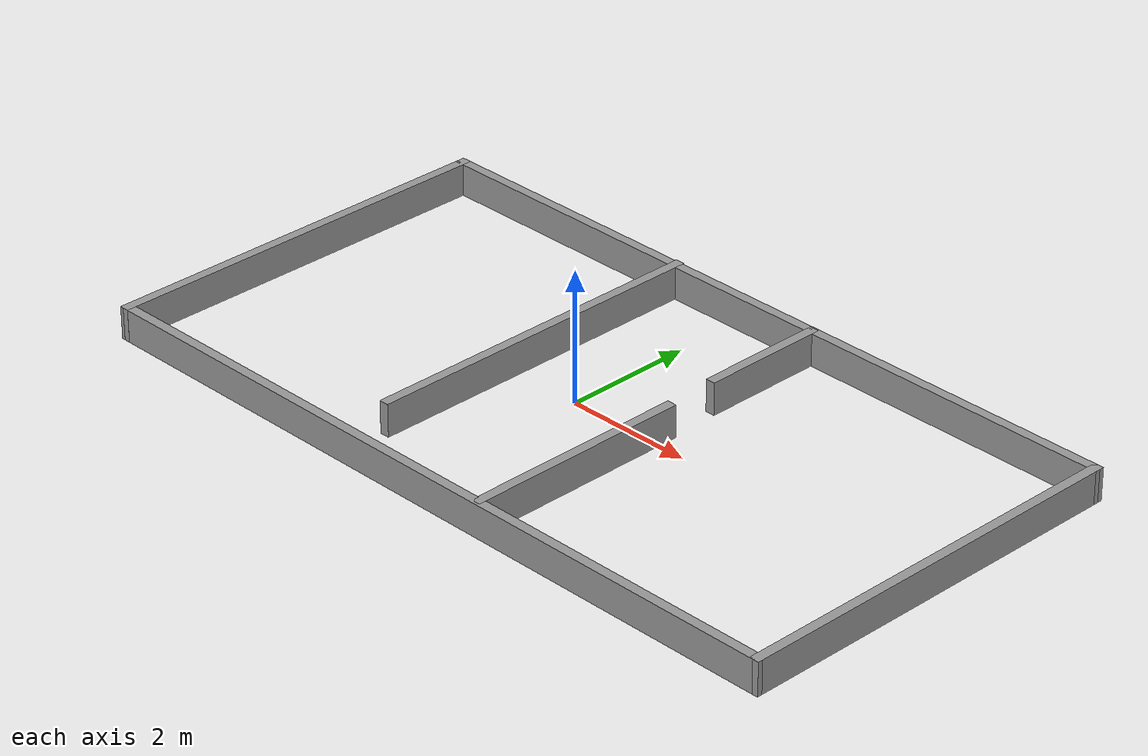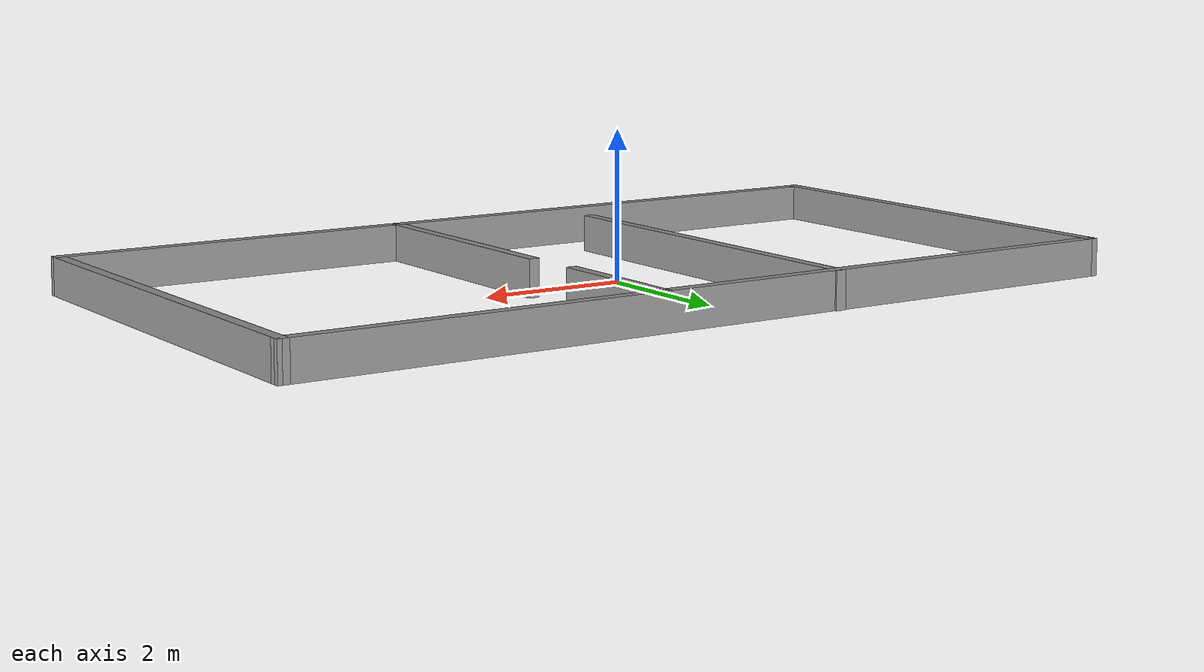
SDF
<?xml version='1.0'?>
<sdf version='1.7'>
  <model name='short_passage_limo'>
    <pose>0.4475 -0.048097 0 0 -0 0</pose>
    <link name='Wall_0'>
      <collision name='Wall_0_Collision'>
        <geometry>
          <box>
            <size>6.32609 0.15 0.5</size>
          </box>
        </geometry>
        <pose>0 0 0.25 0 -0 0</pose>
      </collision>
      <visual name='Wall_0_Visual'>
        <pose>0 0 0.25 0 -0 0</pose>
        <geometry>
          <box>
            <size>6.32609 0.15 0.5</size>
          </box>
        </geometry>
        <material>
          <script>
            <uri>file://media/materials/scripts/gazebo.material</uri>
            <name>Gazebo/Grey</name>
          </script>
          <ambient>1 1 1 1</ambient>
        </material>
        <meta>
          <layer>0</layer>
        </meta>
      </visual>
      <pose>-5.925 -0.011903 0 0 -0 -1.5729</pose>
    </link>
    <link name='Wall_1'>
      <collision name='Wall_1_Collision'>
        <geometry>
          <box>
            <size>12 0.15 0.5</size>
          </box>
        </geometry>
        <pose>0 0 0.25 0 -0 0</pose>
      </collision>
      <visual name='Wall_1_Visual'>
        <pose>0 0 0.25 0 -0 0</pose>
        <geometry>
          <box>
            <size>12 0.15 0.5</size>
          </box>
        </geometry>
        <material>
          <script>
            <uri>file://media/materials/scripts/gazebo.material</uri>
            <name>Gazebo/Grey</name>
          </script>
          <ambient>1 1 1 1</ambient>
        </material>
        <meta>
          <layer>0</layer>
        </meta>
      </visual>
      <pose>-0.0065 -3.0999 0 0 -0 0</pose>
    </link>
    <link name='Wall_11'>
      <collision name='Wall_11_Collision'>
        <geometry>
          <box>
            <size>3.5 0.15 0.5</size>
          </box>
        </geometry>
        <pose>0 0 0.25 0 -0 0</pose>
      </collision>
      <visual name='Wall_11_Visual'>
        <pose>0 0 0.25 0 -0 0</pose>
        <geometry>
          <box>
            <size>3.5 0.15 0.5</size>
          </box>
        </geometry>
        <material>
          <script>
            <uri>file://media/materials/scripts/gazebo.material</uri>
            <name>Gazebo/Grey</name>
          </script>
          <ambient>1 1 1 1</ambient>
        </material>
        <meta>
          <layer>0</layer>
        </meta>
      </visual>
      <pose>1.0375 -1.3849 0 0 -0 1.5708</pose>
    </link>
    <link name='Wall_14'>
      <collision name='Wall_14_Collision'>
        <geometry>
          <box>
            <size>2 0.15 0.5</size>
          </box>
        </geometry>
        <pose>0 0 0.25 0 -0 0</pose>
      </collision>
      <visual name='Wall_14_Visual'>
        <pose>0 0 0.25 0 -0 0</pose>
        <geometry>
          <box>
            <size>2 0.15 0.5</size>
          </box>
        </geometry>
        <material>
          <script>
            <uri>file://media/materials/scripts/gazebo.material</uri>
            <name>Gazebo/Grey</name>
          </script>
          <ambient>1 1 1 1</ambient>
        </material>
        <meta>
          <layer>0</layer>
        </meta>
      </visual>
      <pose>0.9915 2.1291 0 0 -0 -1.5708</pose>
    </link>
    <link name='Wall_3'>
      <collision name='Wall_3_Collision'>
        <geometry>
          <box>
            <size>12 0.15 0.5</size>
          </box>
        </geometry>
        <pose>0 0 0.25 0 -0 0</pose>
      </collision>
      <visual name='Wall_3_Visual'>
        <pose>0 0 0.25 0 -0 0</pose>
        <geometry>
          <box>
            <size>12 0.15 0.5</size>
          </box>
        </geometry>
        <material>
          <script>
            <uri>file://media/materials/scripts/gazebo.material</uri>
            <name>Gazebo/Grey</name>
          </script>
          <ambient>1 1 1 1</ambient>
        </material>
        <meta>
          <layer>0</layer>
        </meta>
      </visual>
      <pose>0.0065 3.0761 0 0 -0 0</pose>
    </link>
    <link name='Wall_4'>
      <collision name='Wall_4_Collision'>
        <geometry>
          <box>
            <size>6.32609 0.15 0.5</size>
          </box>
        </geometry>
        <pose>0 0 0.25 0 -0 0</pose>
      </collision>
      <visual name='Wall_4_Visual'>
        <pose>0 0 0.25 0 -0 0</pose>
        <geometry>
          <box>
            <size>6.32609 0.15 0.5</size>
          </box>
        </geometry>
        <material>
          <script>
            <uri>file://media/materials/scripts/gazebo.material</uri>
            <name>Gazebo/Grey</name>
          </script>
          <ambient>1 1 1 1</ambient>
        </material>
        <meta>
          <layer>0</layer>
        </meta>
      </visual>
      <pose>5.925 -0.011903 0 0 -0 -1.5729</pose>
    </link>
    <link name='Wall_9'>
      <collision name='Wall_9_Collision'>
        <geometry>
          <box>
            <size>5.5 0.15 0.5</size>
          </box>
        </geometry>
        <pose>0 0 0.25 0 -0 0</pose>
      </collision>
      <visual name='Wall_9_Visual'>
        <pose>0 0 0.25 0 -0 0</pose>
        <geometry>
          <box>
            <size>5.5 0.15 0.5</size>
          </box>
        </geometry>
        <material>
          <script>
            <uri>file://media/materials/scripts/gazebo.material</uri>
            <name>Gazebo/Grey</name>
          </script>
          <ambient>1 1 1 1</ambient>
        </material>
        <meta>
          <layer>0</layer>
        </meta>
      </visual>
      <pose>-1.5945 0.425097 0 0 -0 -1.5708</pose>
    </link>
    <static>1</static>
  </model>
</sdf>
